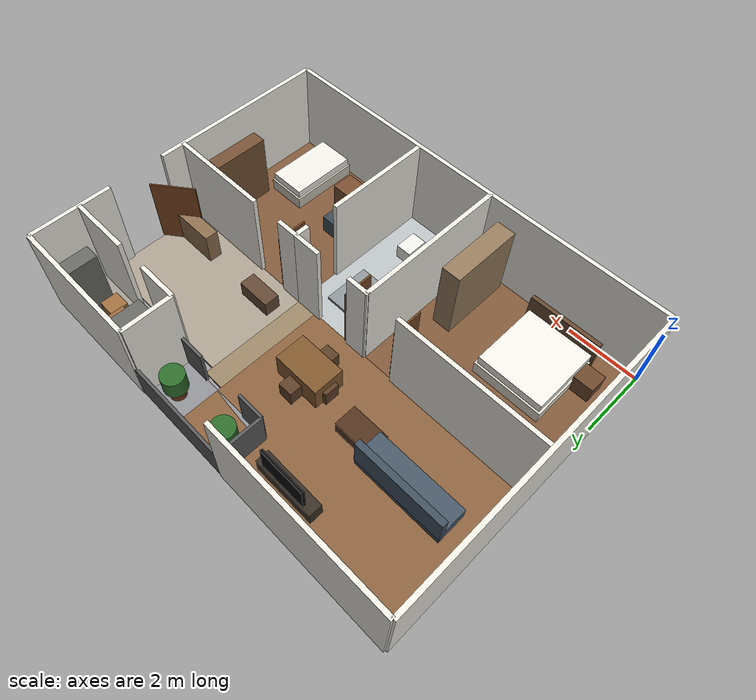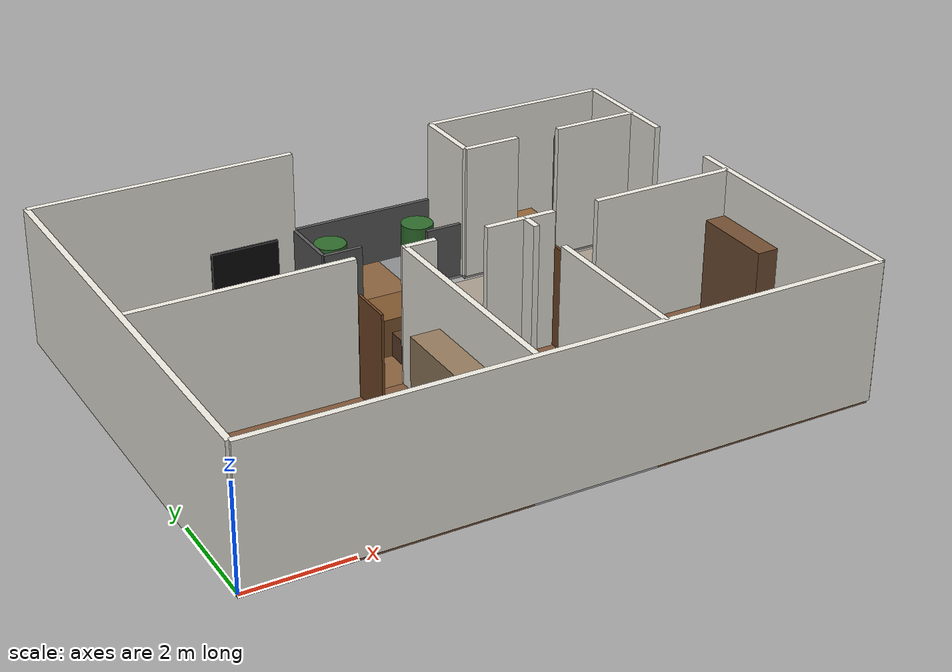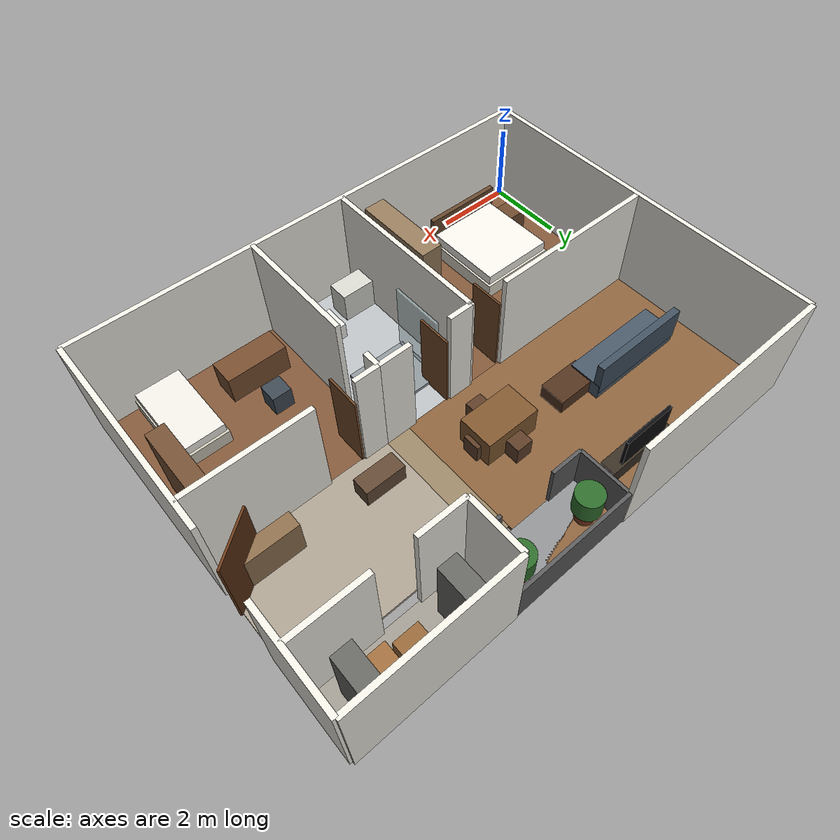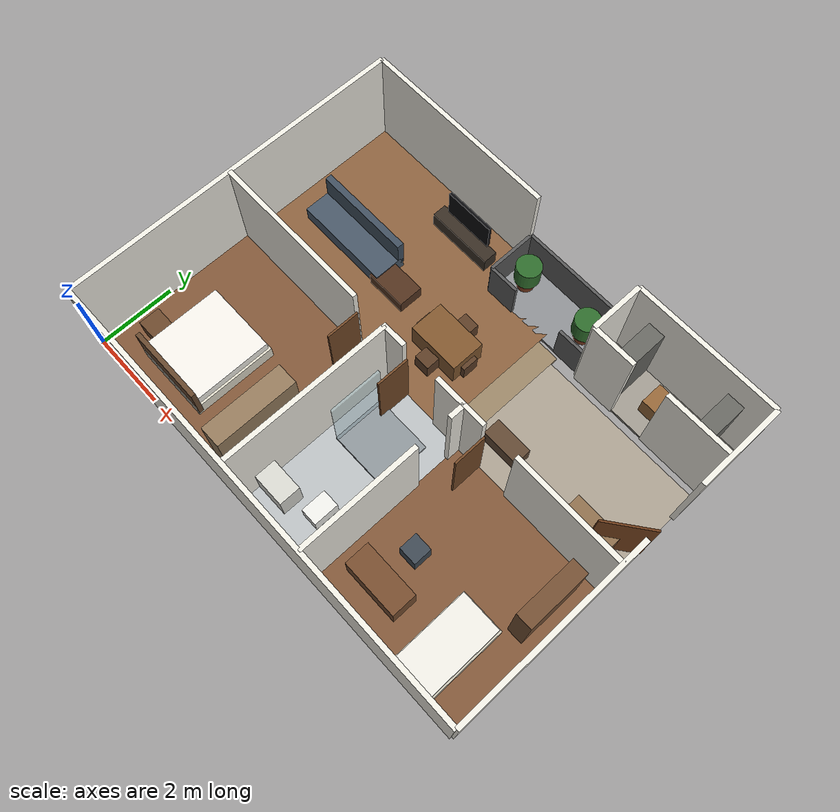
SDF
<?xml version="1.0" ?>
<sdf version="1.9">
  <world name="noni_apartment">
    <gravity>0 0 -9.8</gravity>
    <physics name="default_physics" type="ode">
      <max_step_size>0.001</max_step_size>
      <real_time_factor>1.0</real_time_factor>
    </physics>

    <!-- Gazebo Sim systems. These match the working TurtleBot3 house world. -->
    <plugin
      filename="gz-sim-physics-system"
      name="gz::sim::systems::Physics">
    </plugin>
    <plugin
      filename="gz-sim-user-commands-system"
      name="gz::sim::systems::UserCommands">
    </plugin>
    <plugin
      filename="gz-sim-scene-broadcaster-system"
      name="gz::sim::systems::SceneBroadcaster">
    </plugin>
    <plugin
      filename="gz-sim-sensors-system"
      name="gz::sim::systems::Sensors">
      <render_engine>ogre2</render_engine>
    </plugin>
    <plugin
      filename="gz-sim-imu-system"
      name="gz::sim::systems::Imu">
    </plugin>

    <scene>
      <ambient>0.42 0.42 0.42 1</ambient>
      <background>0.72 0.80 0.88 1</background>
      <shadows>true</shadows>
    </scene>

    <light name="sun" type="directional">
      <cast_shadows>true</cast_shadows>
      <pose>0 0 10 0 0 0</pose>
      <diffuse>0.92 0.88 0.80 1</diffuse>
      <specular>0.25 0.25 0.25 1</specular>
      <attenuation>
        <range>1000</range>
        <constant>0.9</constant>
        <linear>0.01</linear>
        <quadratic>0.001</quadratic>
      </attenuation>
      <direction>-0.35 0.25 -0.9</direction>
    </light>

    <model name="floor_living">
      <static>true</static>
      <pose>3.500 6.700 -0.040 0.000 0.000 0.000</pose>
      <link name="link">
        <collision name="collision">
          <geometry><box><size>7.000 4.600 0.080</size></box></geometry>
        </collision>
        <visual name="visual">
          <geometry><box><size>7.000 4.600 0.080</size></box></geometry>

          <material>
            <ambient>0.54 0.38 0.24 1</ambient>
            <diffuse>0.54 0.38 0.24 1</diffuse>
            <specular>0.15 0.15 0.15 1</specular>
          </material>
        </visual>
      </link>
    </model>
    <model name="floor_master">
      <static>true</static>
      <pose>2.600 2.200 -0.040 0.000 0.000 0.000</pose>
      <link name="link">
        <collision name="collision">
          <geometry><box><size>5.200 4.400 0.080</size></box></geometry>
        </collision>
        <visual name="visual">
          <geometry><box><size>5.200 4.400 0.080</size></box></geometry>

          <material>
            <ambient>0.50 0.34 0.22 1</ambient>
            <diffuse>0.50 0.34 0.22 1</diffuse>
            <specular>0.15 0.15 0.15 1</specular>
          </material>
        </visual>
      </link>
    </model>
    <model name="floor_bath">
      <static>true</static>
      <pose>6.400 2.200 -0.040 0.000 0.000 0.000</pose>
      <link name="link">
        <collision name="collision">
          <geometry><box><size>2.400 4.400 0.080</size></box></geometry>
        </collision>
        <visual name="visual">
          <geometry><box><size>2.400 4.400 0.080</size></box></geometry>

          <material>
            <ambient>0.72 0.74 0.75 1</ambient>
            <diffuse>0.72 0.74 0.75 1</diffuse>
            <specular>0.15 0.15 0.15 1</specular>
          </material>
        </visual>
      </link>
    </model>
    <model name="floor_study">
      <static>true</static>
      <pose>9.800 2.200 -0.040 0.000 0.000 0.000</pose>
      <link name="link">
        <collision name="collision">
          <geometry><box><size>4.400 4.400 0.080</size></box></geometry>
        </collision>
        <visual name="visual">
          <geometry><box><size>4.400 4.400 0.080</size></box></geometry>

          <material>
            <ambient>0.50 0.34 0.22 1</ambient>
            <diffuse>0.50 0.34 0.22 1</diffuse>
            <specular>0.15 0.15 0.15 1</specular>
          </material>
        </visual>
      </link>
    </model>
    <model name="floor_entry">
      <static>true</static>
      <pose>9.800 5.900 -0.040 0.000 0.000 0.000</pose>
      <link name="link">
        <collision name="collision">
          <geometry><box><size>4.400 3.000 0.080</size></box></geometry>
        </collision>
        <visual name="visual">
          <geometry><box><size>4.400 3.000 0.080</size></box></geometry>

          <material>
            <ambient>0.66 0.62 0.56 1</ambient>
            <diffuse>0.66 0.62 0.56 1</diffuse>
            <specular>0.15 0.15 0.15 1</specular>
          </material>
        </visual>
      </link>
    </model>

    <model name="floor_transition">
      <static>true</static>
      <pose>7.300 6.000 -0.040 0.000 0.000 0.000</pose>
      <link name="link">
        <collision name="collision">
          <geometry><box><size>0.600 3.200 0.080</size></box></geometry>
        </collision>
        <visual name="visual">
          <geometry><box><size>0.600 3.200 0.080</size></box></geometry>

          <material>
            <ambient>0.60 0.52 0.40 1</ambient>
            <diffuse>0.60 0.52 0.40 1</diffuse>
            <specular>0.15 0.15 0.15 1</specular>
          </material>
        </visual>
      </link>
    </model>
    <model name="floor_storage">
      <static>true</static>
      <pose>10.100 8.300 -0.040 0.000 0.000 0.000</pose>
      <link name="link">
        <collision name="collision">
          <geometry><box><size>3.800 1.400 0.080</size></box></geometry>
        </collision>
        <visual name="visual">
          <geometry><box><size>3.800 1.400 0.080</size></box></geometry>

          <material>
            <ambient>0.62 0.60 0.56 1</ambient>
            <diffuse>0.62 0.60 0.56 1</diffuse>
            <specular>0.15 0.15 0.15 1</specular>
          </material>
        </visual>
      </link>
    </model>
    <model name="floor_balcony">
      <static>true</static>
      <pose>6.700 8.350 -0.040 0.000 0.000 0.000</pose>
      <link name="link">
        <collision name="collision">
          <geometry><box><size>3.000 1.300 0.080</size></box></geometry>
        </collision>
        <visual name="visual">
          <geometry><box><size>3.000 1.300 0.080</size></box></geometry>

          <material>
            <ambient>0.55 0.56 0.57 1</ambient>
            <diffuse>0.55 0.56 0.57 1</diffuse>
            <specular>0.15 0.15 0.15 1</specular>
          </material>
        </visual>
      </link>
    </model>
    <model name="outer_south">
      <static>true</static>
      <pose>6.000 0.000 1.350 0.000 0.000 0.000</pose>
      <link name="link">
        <collision name="collision">
          <geometry><box><size>12.000 0.120 2.700</size></box></geometry>
        </collision>
        <visual name="visual">
          <geometry><box><size>12.000 0.120 2.700</size></box></geometry>

          <material>
            <ambient>0.93 0.92 0.88 1</ambient>
            <diffuse>0.93 0.92 0.88 1</diffuse>
            <specular>0.15 0.15 0.15 1</specular>
          </material>
        </visual>
      </link>
    </model>
    <model name="outer_west">
      <static>true</static>
      <pose>0.000 4.500 1.350 0.000 0.000 0.000</pose>
      <link name="link">
        <collision name="collision">
          <geometry><box><size>0.120 9.000 2.700</size></box></geometry>
        </collision>
        <visual name="visual">
          <geometry><box><size>0.120 9.000 2.700</size></box></geometry>

          <material>
            <ambient>0.93 0.92 0.88 1</ambient>
            <diffuse>0.93 0.92 0.88 1</diffuse>
            <specular>0.15 0.15 0.15 1</specular>
          </material>
        </visual>
      </link>
    </model>
    <model name="outer_north_left">
      <static>true</static>
      <pose>2.600 9.000 1.350 0.000 0.000 0.000</pose>
      <link name="link">
        <collision name="collision">
          <geometry><box><size>5.200 0.120 2.700</size></box></geometry>
        </collision>
        <visual name="visual">
          <geometry><box><size>5.200 0.120 2.700</size></box></geometry>

          <material>
            <ambient>0.93 0.92 0.88 1</ambient>
            <diffuse>0.93 0.92 0.88 1</diffuse>
            <specular>0.15 0.15 0.15 1</specular>
          </material>
        </visual>
      </link>
    </model>
    <model name="outer_north_right">
      <static>true</static>
      <pose>10.100 9.000 1.350 0.000 0.000 0.000</pose>
      <link name="link">
        <collision name="collision">
          <geometry><box><size>3.800 0.120 2.700</size></box></geometry>
        </collision>
        <visual name="visual">
          <geometry><box><size>3.800 0.120 2.700</size></box></geometry>

          <material>
            <ambient>0.93 0.92 0.88 1</ambient>
            <diffuse>0.93 0.92 0.88 1</diffuse>
            <specular>0.15 0.15 0.15 1</specular>
          </material>
        </visual>
      </link>
    </model>
    <model name="outer_east_lower">
      <static>true</static>
      <pose>12.000 2.550 1.350 0.000 0.000 0.000</pose>
      <link name="link">
        <collision name="collision">
          <geometry><box><size>0.120 5.100 2.700</size></box></geometry>
        </collision>
        <visual name="visual">
          <geometry><box><size>0.120 5.100 2.700</size></box></geometry>

          <material>
            <ambient>0.93 0.92 0.88 1</ambient>
            <diffuse>0.93 0.92 0.88 1</diffuse>
            <specular>0.15 0.15 0.15 1</specular>
          </material>
        </visual>
      </link>
    </model>
    <model name="outer_east_upper">
      <static>true</static>
      <pose>12.000 7.850 1.350 0.000 0.000 0.000</pose>
      <link name="link">
        <collision name="collision">
          <geometry><box><size>0.120 2.300 2.700</size></box></geometry>
        </collision>
        <visual name="visual">
          <geometry><box><size>0.120 2.300 2.700</size></box></geometry>

          <material>
            <ambient>0.93 0.92 0.88 1</ambient>
            <diffuse>0.93 0.92 0.88 1</diffuse>
            <specular>0.15 0.15 0.15 1</specular>
          </material>
        </visual>
      </link>
    </model>
    <model name="wall_living_master_a">
      <static>true</static>
      <pose>2.125 4.400 1.350 0.000 0.000 0.000</pose>
      <link name="link">
        <collision name="collision">
          <geometry><box><size>4.250 0.120 2.700</size></box></geometry>
        </collision>
        <visual name="visual">
          <geometry><box><size>4.250 0.120 2.700</size></box></geometry>

          <material>
            <ambient>0.93 0.92 0.88 1</ambient>
            <diffuse>0.93 0.92 0.88 1</diffuse>
            <specular>0.15 0.15 0.15 1</specular>
          </material>
        </visual>
      </link>
    </model>
    <model name="wall_living_master_b">
      <static>true</static>
      <pose>5.175 4.400 1.350 0.000 0.000 0.000</pose>
      <link name="link">
        <collision name="collision">
          <geometry><box><size>0.050 0.120 2.700</size></box></geometry>
        </collision>
        <visual name="visual">
          <geometry><box><size>0.050 0.120 2.700</size></box></geometry>

          <material>
            <ambient>0.93 0.92 0.88 1</ambient>
            <diffuse>0.93 0.92 0.88 1</diffuse>
            <specular>0.15 0.15 0.15 1</specular>
          </material>
        </visual>
      </link>
    </model>
    <model name="wall_living_bath_a">
      <static>true</static>
      <pose>5.500 4.400 1.350 0.000 0.000 0.000</pose>
      <link name="link">
        <collision name="collision">
          <geometry><box><size>0.600 0.120 2.700</size></box></geometry>
        </collision>
        <visual name="visual">
          <geometry><box><size>0.600 0.120 2.700</size></box></geometry>

          <material>
            <ambient>0.93 0.92 0.88 1</ambient>
            <diffuse>0.93 0.92 0.88 1</diffuse>
            <specular>0.15 0.15 0.15 1</specular>
          </material>
        </visual>
      </link>
    </model>
    <model name="wall_living_bath_b">
      <static>true</static>
      <pose>7.200 4.400 1.350 0.000 0.000 0.000</pose>
      <link name="link">
        <collision name="collision">
          <geometry><box><size>0.800 0.120 2.700</size></box></geometry>
        </collision>
        <visual name="visual">
          <geometry><box><size>0.800 0.120 2.700</size></box></geometry>

          <material>
            <ambient>0.93 0.92 0.88 1</ambient>
            <diffuse>0.93 0.92 0.88 1</diffuse>
            <specular>0.15 0.15 0.15 1</specular>
          </material>
        </visual>
      </link>
    </model>
    <model name="wall_hall_study_a">
      <static>true</static>
      <pose>7.900 4.400 1.350 0.000 0.000 0.000</pose>
      <link name="link">
        <collision name="collision">
          <geometry><box><size>0.600 0.120 2.700</size></box></geometry>
        </collision>
        <visual name="visual">
          <geometry><box><size>0.600 0.120 2.700</size></box></geometry>

          <material>
            <ambient>0.93 0.92 0.88 1</ambient>
            <diffuse>0.93 0.92 0.88 1</diffuse>
            <specular>0.15 0.15 0.15 1</specular>
          </material>
        </visual>
      </link>
    </model>
    <model name="wall_hall_study_b">
      <static>true</static>
      <pose>10.550 4.400 1.350 0.000 0.000 0.000</pose>
      <link name="link">
        <collision name="collision">
          <geometry><box><size>2.900 0.120 2.700</size></box></geometry>
        </collision>
        <visual name="visual">
          <geometry><box><size>2.900 0.120 2.700</size></box></geometry>

          <material>
            <ambient>0.93 0.92 0.88 1</ambient>
            <diffuse>0.93 0.92 0.88 1</diffuse>
            <specular>0.15 0.15 0.15 1</specular>
          </material>
        </visual>
      </link>
    </model>
    <model name="wall_master_bath">
      <static>true</static>
      <pose>5.200 2.200 1.350 0.000 0.000 0.000</pose>
      <link name="link">
        <collision name="collision">
          <geometry><box><size>0.120 4.400 2.700</size></box></geometry>
        </collision>
        <visual name="visual">
          <geometry><box><size>0.120 4.400 2.700</size></box></geometry>

          <material>
            <ambient>0.93 0.92 0.88 1</ambient>
            <diffuse>0.93 0.92 0.88 1</diffuse>
            <specular>0.15 0.15 0.15 1</specular>
          </material>
        </visual>
      </link>
    </model>
    <model name="wall_bath_study">
      <static>true</static>
      <pose>7.600 1.550 1.350 0.000 0.000 0.000</pose>
      <link name="link">
        <collision name="collision">
          <geometry><box><size>0.120 3.100 2.700</size></box></geometry>
        </collision>
        <visual name="visual">
          <geometry><box><size>0.120 3.100 2.700</size></box></geometry>

          <material>
            <ambient>0.93 0.92 0.88 1</ambient>
            <diffuse>0.93 0.92 0.88 1</diffuse>
            <specular>0.15 0.15 0.15 1</specular>
          </material>
        </visual>
      </link>
    </model>
    <model name="wall_bath_study_upper">
      <static>true</static>
      <pose>7.600 4.200 1.350 0.000 0.000 0.000</pose>
      <link name="link">
        <collision name="collision">
          <geometry><box><size>0.120 0.400 2.700</size></box></geometry>
        </collision>
        <visual name="visual">
          <geometry><box><size>0.120 0.400 2.700</size></box></geometry>

          <material>
            <ambient>0.93 0.92 0.88 1</ambient>
            <diffuse>0.93 0.92 0.88 1</diffuse>
            <specular>0.15 0.15 0.15 1</specular>
          </material>
        </visual>
      </link>
    </model>
    <model name="wall_living_storage_a">
      <static>true</static>
      <pose>8.775 7.600 1.350 0.000 0.000 0.000</pose>
      <link name="link">
        <collision name="collision">
          <geometry><box><size>1.150 0.120 2.700</size></box></geometry>
        </collision>
        <visual name="visual">
          <geometry><box><size>1.150 0.120 2.700</size></box></geometry>

          <material>
            <ambient>0.93 0.92 0.88 1</ambient>
            <diffuse>0.93 0.92 0.88 1</diffuse>
            <specular>0.15 0.15 0.15 1</specular>
          </material>
        </visual>
      </link>
    </model>
    <model name="wall_living_storage_b">
      <static>true</static>
      <pose>11.125 7.600 1.350 0.000 0.000 0.000</pose>
      <link name="link">
        <collision name="collision">
          <geometry><box><size>1.750 0.120 2.700</size></box></geometry>
        </collision>
        <visual name="visual">
          <geometry><box><size>1.750 0.120 2.700</size></box></geometry>

          <material>
            <ambient>0.93 0.92 0.88 1</ambient>
            <diffuse>0.93 0.92 0.88 1</diffuse>
            <specular>0.15 0.15 0.15 1</specular>
          </material>
        </visual>
      </link>
    </model>
    <model name="wall_balcony_storage">
      <static>true</static>
      <pose>8.200 8.300 1.350 0.000 0.000 0.000</pose>
      <link name="link">
        <collision name="collision">
          <geometry><box><size>0.120 1.400 2.700</size></box></geometry>
        </collision>
        <visual name="visual">
          <geometry><box><size>0.120 1.400 2.700</size></box></geometry>

          <material>
            <ambient>0.93 0.92 0.88 1</ambient>
            <diffuse>0.93 0.92 0.88 1</diffuse>
            <specular>0.15 0.15 0.15 1</specular>
          </material>
        </visual>
      </link>
    </model>
    <model name="wall_balcony_front_left">
      <static>true</static>
      <pose>5.600 7.700 0.550 0.000 0.000 0.000</pose>
      <link name="link">
        <collision name="collision">
          <geometry><box><size>0.800 0.080 1.100</size></box></geometry>
        </collision>
        <visual name="visual">
          <geometry><box><size>0.800 0.080 1.100</size></box></geometry>

          <material>
            <ambient>0.35 0.35 0.35 1</ambient>
            <diffuse>0.35 0.35 0.35 1</diffuse>
            <specular>0.15 0.15 0.15 1</specular>
          </material>
        </visual>
      </link>
    </model>
    <model name="wall_balcony_front_right">
      <static>true</static>
      <pose>7.800 7.700 0.550 0.000 0.000 0.000</pose>
      <link name="link">
        <collision name="collision">
          <geometry><box><size>0.800 0.080 1.100</size></box></geometry>
        </collision>
        <visual name="visual">
          <geometry><box><size>0.800 0.080 1.100</size></box></geometry>

          <material>
            <ambient>0.35 0.35 0.35 1</ambient>
            <diffuse>0.35 0.35 0.35 1</diffuse>
            <specular>0.15 0.15 0.15 1</specular>
          </material>
        </visual>
      </link>
    </model>
    <model name="balcony_left_rail">
      <static>true</static>
      <pose>5.200 8.350 0.550 0.000 0.000 0.000</pose>
      <link name="link">
        <collision name="collision">
          <geometry><box><size>0.080 1.300 1.100</size></box></geometry>
        </collision>
        <visual name="visual">
          <geometry><box><size>0.080 1.300 1.100</size></box></geometry>

          <material>
            <ambient>0.35 0.35 0.35 1</ambient>
            <diffuse>0.35 0.35 0.35 1</diffuse>
            <specular>0.15 0.15 0.15 1</specular>
          </material>
        </visual>
      </link>
    </model>
    <model name="balcony_right_rail">
      <static>true</static>
      <pose>8.200 8.350 0.550 0.000 0.000 0.000</pose>
      <link name="link">
        <collision name="collision">
          <geometry><box><size>0.080 1.300 1.100</size></box></geometry>
        </collision>
        <visual name="visual">
          <geometry><box><size>0.080 1.300 1.100</size></box></geometry>

          <material>
            <ambient>0.35 0.35 0.35 1</ambient>
            <diffuse>0.35 0.35 0.35 1</diffuse>
            <specular>0.15 0.15 0.15 1</specular>
          </material>
        </visual>
      </link>
    </model>
    <model name="balcony_north_rail">
      <static>true</static>
      <pose>6.700 9.000 0.550 0.000 0.000 0.000</pose>
      <link name="link">
        <collision name="collision">
          <geometry><box><size>3.000 0.080 1.100</size></box></geometry>
        </collision>
        <visual name="visual">
          <geometry><box><size>3.000 0.080 1.100</size></box></geometry>

          <material>
            <ambient>0.35 0.35 0.35 1</ambient>
            <diffuse>0.35 0.35 0.35 1</diffuse>
            <specular>0.15 0.15 0.15 1</specular>
          </material>
        </visual>
      </link>
    </model>
    <model name="sofa_base">
      <static>true</static>
      <pose>2.000 6.200 0.210 0.000 0.000 0.000</pose>
      <link name="link">
        <collision name="collision">
          <geometry><box><size>2.600 0.850 0.420</size></box></geometry>
        </collision>
        <visual name="visual">
          <geometry><box><size>2.600 0.850 0.420</size></box></geometry>

          <material>
            <ambient>0.28 0.34 0.40 1</ambient>
            <diffuse>0.28 0.34 0.40 1</diffuse>
            <specular>0.15 0.15 0.15 1</specular>
          </material>
        </visual>
      </link>
    </model>
    <model name="sofa_back">
      <static>true</static>
      <pose>2.000 6.550 0.620 0.000 0.000 0.000</pose>
      <link name="link">
        <collision name="collision">
          <geometry><box><size>2.600 0.180 0.850</size></box></geometry>
        </collision>
        <visual name="visual">
          <geometry><box><size>2.600 0.180 0.850</size></box></geometry>

          <material>
            <ambient>0.25 0.31 0.37 1</ambient>
            <diffuse>0.25 0.31 0.37 1</diffuse>
            <specular>0.15 0.15 0.15 1</specular>
          </material>
        </visual>
      </link>
    </model>
    <model name="coffee_table">
      <static>true</static>
      <pose>3.650 6.050 0.190 0.000 0.000 0.000</pose>
      <link name="link">
        <collision name="collision">
          <geometry><box><size>1.100 0.650 0.380</size></box></geometry>
        </collision>
        <visual name="visual">
          <geometry><box><size>1.100 0.650 0.380</size></box></geometry>

          <material>
            <ambient>0.32 0.20 0.12 1</ambient>
            <diffuse>0.32 0.20 0.12 1</diffuse>
            <specular>0.15 0.15 0.15 1</specular>
          </material>
        </visual>
      </link>
    </model>
    <model name="tv_console">
      <static>true</static>
      <pose>3.850 8.150 0.225 0.000 0.000 0.000</pose>
      <link name="link">
        <collision name="collision">
          <geometry><box><size>1.800 0.380 0.450</size></box></geometry>
        </collision>
        <visual name="visual">
          <geometry><box><size>1.800 0.380 0.450</size></box></geometry>

          <material>
            <ambient>0.22 0.18 0.14 1</ambient>
            <diffuse>0.22 0.18 0.14 1</diffuse>
            <specular>0.15 0.15 0.15 1</specular>
          </material>
        </visual>
      </link>
    </model>
    <model name="tv_screen">
      <static>true</static>
      <pose>3.850 8.280 0.950 0.000 0.000 0.000</pose>
      <link name="link">
        <collision name="collision">
          <geometry><box><size>1.350 0.080 0.780</size></box></geometry>
        </collision>
        <visual name="visual">
          <geometry><box><size>1.350 0.080 0.780</size></box></geometry>

          <material>
            <ambient>0.04 0.04 0.05 1</ambient>
            <diffuse>0.04 0.04 0.05 1</diffuse>
            <specular>0.15 0.15 0.15 1</specular>
          </material>
        </visual>
      </link>
    </model>
    <model name="dining_table">
      <static>true</static>
      <pose>5.650 5.850 0.375 0.000 0.000 0.000</pose>
      <link name="link">
        <collision name="collision">
          <geometry><box><size>1.400 0.900 0.750</size></box></geometry>
        </collision>
        <visual name="visual">
          <geometry><box><size>1.400 0.900 0.750</size></box></geometry>

          <material>
            <ambient>0.50 0.34 0.18 1</ambient>
            <diffuse>0.50 0.34 0.18 1</diffuse>
            <specular>0.15 0.15 0.15 1</specular>
          </material>
        </visual>
      </link>
    </model>
    <model name="dining_chair_1">
      <static>true</static>
      <pose>5.050 5.850 0.240 0.000 0.000 0.000</pose>
      <link name="link">
        <collision name="collision">
          <geometry><box><size>0.420 0.420 0.480</size></box></geometry>
        </collision>
        <visual name="visual">
          <geometry><box><size>0.420 0.420 0.480</size></box></geometry>

          <material>
            <ambient>0.36 0.24 0.15 1</ambient>
            <diffuse>0.36 0.24 0.15 1</diffuse>
            <specular>0.15 0.15 0.15 1</specular>
          </material>
        </visual>
      </link>
    </model>
    <model name="dining_chair_2">
      <static>true</static>
      <pose>6.250 5.850 0.240 0.000 0.000 0.000</pose>
      <link name="link">
        <collision name="collision">
          <geometry><box><size>0.420 0.420 0.480</size></box></geometry>
        </collision>
        <visual name="visual">
          <geometry><box><size>0.420 0.420 0.480</size></box></geometry>

          <material>
            <ambient>0.36 0.24 0.15 1</ambient>
            <diffuse>0.36 0.24 0.15 1</diffuse>
            <specular>0.15 0.15 0.15 1</specular>
          </material>
        </visual>
      </link>
    </model>
    <model name="dining_chair_3">
      <static>true</static>
      <pose>5.650 5.250 0.240 0.000 0.000 0.000</pose>
      <link name="link">
        <collision name="collision">
          <geometry><box><size>0.420 0.420 0.480</size></box></geometry>
        </collision>
        <visual name="visual">
          <geometry><box><size>0.420 0.420 0.480</size></box></geometry>

          <material>
            <ambient>0.36 0.24 0.15 1</ambient>
            <diffuse>0.36 0.24 0.15 1</diffuse>
            <specular>0.15 0.15 0.15 1</specular>
          </material>
        </visual>
      </link>
    </model>
    <model name="dining_chair_4">
      <static>true</static>
      <pose>5.650 6.450 0.240 0.000 0.000 0.000</pose>
      <link name="link">
        <collision name="collision">
          <geometry><box><size>0.420 0.420 0.480</size></box></geometry>
        </collision>
        <visual name="visual">
          <geometry><box><size>0.420 0.420 0.480</size></box></geometry>

          <material>
            <ambient>0.36 0.24 0.15 1</ambient>
            <diffuse>0.36 0.24 0.15 1</diffuse>
            <specular>0.15 0.15 0.15 1</specular>
          </material>
        </visual>
      </link>
    </model>
    <model name="master_bed_base">
      <static>true</static>
      <pose>2.000 1.650 0.190 0.000 0.000 0.000</pose>
      <link name="link">
        <collision name="collision">
          <geometry><box><size>2.000 2.200 0.380</size></box></geometry>
        </collision>
        <visual name="visual">
          <geometry><box><size>2.000 2.200 0.380</size></box></geometry>

          <material>
            <ambient>0.86 0.84 0.78 1</ambient>
            <diffuse>0.86 0.84 0.78 1</diffuse>
            <specular>0.15 0.15 0.15 1</specular>
          </material>
        </visual>
      </link>
    </model>
    <model name="master_mattress">
      <static>true</static>
      <pose>2.000 1.650 0.520 0.000 0.000 0.000</pose>
      <link name="link">
        <collision name="collision">
          <geometry><box><size>1.900 2.100 0.250</size></box></geometry>
        </collision>
        <visual name="visual">
          <geometry><box><size>1.900 2.100 0.250</size></box></geometry>

          <material>
            <ambient>0.94 0.93 0.90 1</ambient>
            <diffuse>0.94 0.93 0.90 1</diffuse>
            <specular>0.15 0.15 0.15 1</specular>
          </material>
        </visual>
      </link>
    </model>
    <model name="master_headboard">
      <static>true</static>
      <pose>2.000 0.620 0.620 0.000 0.000 0.000</pose>
      <link name="link">
        <collision name="collision">
          <geometry><box><size>2.050 0.120 1.000</size></box></geometry>
        </collision>
        <visual name="visual">
          <geometry><box><size>2.050 0.120 1.000</size></box></geometry>

          <material>
            <ambient>0.40 0.28 0.18 1</ambient>
            <diffuse>0.40 0.28 0.18 1</diffuse>
            <specular>0.15 0.15 0.15 1</specular>
          </material>
        </visual>
      </link>
    </model>
    <model name="master_wardrobe">
      <static>true</static>
      <pose>4.450 1.250 1.100 0.000 0.000 0.000</pose>
      <link name="link">
        <collision name="collision">
          <geometry><box><size>0.550 2.100 2.200</size></box></geometry>
        </collision>
        <visual name="visual">
          <geometry><box><size>0.550 2.100 2.200</size></box></geometry>

          <material>
            <ambient>0.58 0.48 0.36 1</ambient>
            <diffuse>0.58 0.48 0.36 1</diffuse>
            <specular>0.15 0.15 0.15 1</specular>
          </material>
        </visual>
      </link>
    </model>
    <model name="master_nightstand">
      <static>true</static>
      <pose>0.750 1.150 0.275 0.000 0.000 0.000</pose>
      <link name="link">
        <collision name="collision">
          <geometry><box><size>0.550 0.550 0.550</size></box></geometry>
        </collision>
        <visual name="visual">
          <geometry><box><size>0.550 0.550 0.550</size></box></geometry>

          <material>
            <ambient>0.42 0.28 0.17 1</ambient>
            <diffuse>0.42 0.28 0.17 1</diffuse>
            <specular>0.15 0.15 0.15 1</specular>
          </material>
        </visual>
      </link>
    </model>
    <model name="bath_vanity">
      <static>true</static>
      <pose>5.700 0.750 0.400 0.000 0.000 0.000</pose>
      <link name="link">
        <collision name="collision">
          <geometry><box><size>0.850 0.550 0.800</size></box></geometry>
        </collision>
        <visual name="visual">
          <geometry><box><size>0.850 0.550 0.800</size></box></geometry>

          <material>
            <ambient>0.83 0.83 0.80 1</ambient>
            <diffuse>0.83 0.83 0.80 1</diffuse>
            <specular>0.15 0.15 0.15 1</specular>
          </material>
        </visual>
      </link>
    </model>
    <model name="bath_toilet_base">
      <static>true</static>
      <pose>6.650 1.100 0.215 0.000 0.000 0.000</pose>
      <link name="link">
        <collision name="collision">
          <geometry><box><size>0.450 0.650 0.430</size></box></geometry>
        </collision>
        <visual name="visual">
          <geometry><box><size>0.450 0.650 0.430</size></box></geometry>

          <material>
            <ambient>0.92 0.92 0.90 1</ambient>
            <diffuse>0.92 0.92 0.90 1</diffuse>
            <specular>0.15 0.15 0.15 1</specular>
          </material>
        </visual>
      </link>
    </model>
    <model name="bath_shower">
      <static>true</static>
      <pose>6.350 3.150 0.040 0.000 0.000 0.000</pose>
      <link name="link">
        <collision name="collision">
          <geometry><box><size>1.550 1.350 0.080</size></box></geometry>
        </collision>
        <visual name="visual">
          <geometry><box><size>1.550 1.350 0.080</size></box></geometry>

          <material>
            <ambient>0.55 0.58 0.60 1</ambient>
            <diffuse>0.55 0.58 0.60 1</diffuse>
            <specular>0.15 0.15 0.15 1</specular>
          </material>
        </visual>
      </link>
    </model>
    <model name="bath_shower_wall">
      <static>true</static>
      <pose>5.620 3.150 0.950 0.000 0.000 0.000</pose>
      <link name="link">
        <collision name="collision">
          <geometry><box><size>0.060 1.350 1.900</size></box></geometry>
        </collision>
        <visual name="visual">
          <geometry><box><size>0.060 1.350 1.900</size></box></geometry>

          <material>
            <ambient>0.70 0.82 0.86 0.45</ambient>
            <diffuse>0.70 0.82 0.86 0.45</diffuse>
            <specular>0.15 0.15 0.15 1</specular>
          </material>
        </visual>
      </link>
    </model>
    <model name="single_bed_base">
      <static>true</static>
      <pose>10.650 1.150 0.180 0.000 0.000 0.000</pose>
      <link name="link">
        <collision name="collision">
          <geometry><box><size>1.150 2.050 0.360</size></box></geometry>
        </collision>
        <visual name="visual">
          <geometry><box><size>1.150 2.050 0.360</size></box></geometry>

          <material>
            <ambient>0.78 0.76 0.70 1</ambient>
            <diffuse>0.78 0.76 0.70 1</diffuse>
            <specular>0.15 0.15 0.15 1</specular>
          </material>
        </visual>
      </link>
    </model>
    <model name="single_mattress">
      <static>true</static>
      <pose>10.650 1.150 0.490 0.000 0.000 0.000</pose>
      <link name="link">
        <collision name="collision">
          <geometry><box><size>1.070 1.950 0.220</size></box></geometry>
        </collision>
        <visual name="visual">
          <geometry><box><size>1.070 1.950 0.220</size></box></geometry>

          <material>
            <ambient>0.92 0.91 0.88 1</ambient>
            <diffuse>0.92 0.91 0.88 1</diffuse>
            <specular>0.15 0.15 0.15 1</specular>
          </material>
        </visual>
      </link>
    </model>
    <model name="study_desk">
      <static>true</static>
      <pose>8.750 1.000 0.375 0.000 0.000 0.000</pose>
      <link name="link">
        <collision name="collision">
          <geometry><box><size>1.500 0.650 0.750</size></box></geometry>
        </collision>
        <visual name="visual">
          <geometry><box><size>1.500 0.650 0.750</size></box></geometry>

          <material>
            <ambient>0.46 0.30 0.18 1</ambient>
            <diffuse>0.46 0.30 0.18 1</diffuse>
            <specular>0.15 0.15 0.15 1</specular>
          </material>
        </visual>
      </link>
    </model>
    <model name="study_chair">
      <static>true</static>
      <pose>8.750 2.000 0.275 0.000 0.000 0.000</pose>
      <link name="link">
        <collision name="collision">
          <geometry><box><size>0.480 0.480 0.550</size></box></geometry>
        </collision>
        <visual name="visual">
          <geometry><box><size>0.480 0.480 0.550</size></box></geometry>

          <material>
            <ambient>0.24 0.28 0.32 1</ambient>
            <diffuse>0.24 0.28 0.32 1</diffuse>
            <specular>0.15 0.15 0.15 1</specular>
          </material>
        </visual>
      </link>
    </model>
    <model name="bookshelf">
      <static>true</static>
      <pose>11.450 3.150 1.000 0.000 0.000 0.000</pose>
      <link name="link">
        <collision name="collision">
          <geometry><box><size>0.420 1.600 2.000</size></box></geometry>
        </collision>
        <visual name="visual">
          <geometry><box><size>0.420 1.600 2.000</size></box></geometry>

          <material>
            <ambient>0.45 0.31 0.20 1</ambient>
            <diffuse>0.45 0.31 0.20 1</diffuse>
            <specular>0.15 0.15 0.15 1</specular>
          </material>
        </visual>
      </link>
    </model>
    <model name="shoe_cabinet">
      <static>true</static>
      <pose>10.950 5.100 0.475 0.000 0.000 0.000</pose>
      <link name="link">
        <collision name="collision">
          <geometry><box><size>1.250 0.380 0.950</size></box></geometry>
        </collision>
        <visual name="visual">
          <geometry><box><size>1.250 0.380 0.950</size></box></geometry>

          <material>
            <ambient>0.55 0.43 0.30 1</ambient>
            <diffuse>0.55 0.43 0.30 1</diffuse>
            <specular>0.15 0.15 0.15 1</specular>
          </material>
        </visual>
      </link>
    </model>
    <model name="entry_bench">
      <static>true</static>
      <pose>8.350 5.150 0.240 0.000 0.000 0.000</pose>
      <link name="link">
        <collision name="collision">
          <geometry><box><size>1.000 0.450 0.480</size></box></geometry>
        </collision>
        <visual name="visual">
          <geometry><box><size>1.000 0.450 0.480</size></box></geometry>

          <material>
            <ambient>0.38 0.28 0.20 1</ambient>
            <diffuse>0.38 0.28 0.20 1</diffuse>
            <specular>0.15 0.15 0.15 1</specular>
          </material>
        </visual>
      </link>
    </model>
    <model name="storage_shelf_1">
      <static>true</static>
      <pose>9.000 8.450 0.950 0.000 0.000 0.000</pose>
      <link name="link">
        <collision name="collision">
          <geometry><box><size>0.450 0.950 1.900</size></box></geometry>
        </collision>
        <visual name="visual">
          <geometry><box><size>0.450 0.950 1.900</size></box></geometry>

          <material>
            <ambient>0.40 0.40 0.38 1</ambient>
            <diffuse>0.40 0.40 0.38 1</diffuse>
            <specular>0.15 0.15 0.15 1</specular>
          </material>
        </visual>
      </link>
    </model>
    <model name="storage_shelf_2">
      <static>true</static>
      <pose>11.250 8.450 0.950 0.000 0.000 0.000</pose>
      <link name="link">
        <collision name="collision">
          <geometry><box><size>0.450 0.950 1.900</size></box></geometry>
        </collision>
        <visual name="visual">
          <geometry><box><size>0.450 0.950 1.900</size></box></geometry>

          <material>
            <ambient>0.40 0.40 0.38 1</ambient>
            <diffuse>0.40 0.40 0.38 1</diffuse>
            <specular>0.15 0.15 0.15 1</specular>
          </material>
        </visual>
      </link>
    </model>
    <model name="storage_box_1">
      <static>true</static>
      <pose>10.050 8.350 0.275 0.000 0.000 0.000</pose>
      <link name="link">
        <collision name="collision">
          <geometry><box><size>0.600 0.600 0.550</size></box></geometry>
        </collision>
        <visual name="visual">
          <geometry><box><size>0.600 0.600 0.550</size></box></geometry>

          <material>
            <ambient>0.58 0.40 0.22 1</ambient>
            <diffuse>0.58 0.40 0.22 1</diffuse>
            <specular>0.15 0.15 0.15 1</specular>
          </material>
        </visual>
      </link>
    </model>
    <model name="storage_box_2">
      <static>true</static>
      <pose>10.650 8.150 0.225 0.000 0.000 0.000</pose>
      <link name="link">
        <collision name="collision">
          <geometry><box><size>0.500 0.500 0.450</size></box></geometry>
        </collision>
        <visual name="visual">
          <geometry><box><size>0.500 0.500 0.450</size></box></geometry>

          <material>
            <ambient>0.62 0.43 0.24 1</ambient>
            <diffuse>0.62 0.43 0.24 1</diffuse>
            <specular>0.15 0.15 0.15 1</specular>
          </material>
        </visual>
      </link>
    </model>
    <model name="balcony_pot_1">
      <static>true</static>
      <pose>5.700 8.450 0.220 0.000 0.000 0.000</pose>
      <link name="link">
        <collision name="collision">
          <geometry><cylinder><radius>0.220</radius><length>0.440</length></cylinder></geometry>
        </collision>
        <visual name="visual">
          <geometry><cylinder><radius>0.220</radius><length>0.440</length></cylinder></geometry>

          <material>
            <ambient>0.43 0.20 0.10 1</ambient>
            <diffuse>0.43 0.20 0.10 1</diffuse>
            <specular>0.15 0.15 0.15 1</specular>
          </material>
        </visual>
      </link>
    </model>
    <model name="balcony_plant_1">
      <static>true</static>
      <pose>5.700 8.450 0.650 0.000 0.000 0.000</pose>
      <link name="link">
        <collision name="collision">
          <geometry><cylinder><radius>0.320</radius><length>0.550</length></cylinder></geometry>
        </collision>
        <visual name="visual">
          <geometry><cylinder><radius>0.320</radius><length>0.550</length></cylinder></geometry>

          <material>
            <ambient>0.18 0.42 0.17 1</ambient>
            <diffuse>0.18 0.42 0.17 1</diffuse>
            <specular>0.15 0.15 0.15 1</specular>
          </material>
        </visual>
      </link>
    </model>
    <model name="balcony_pot_2">
      <static>true</static>
      <pose>7.600 8.450 0.220 0.000 0.000 0.000</pose>
      <link name="link">
        <collision name="collision">
          <geometry><cylinder><radius>0.220</radius><length>0.440</length></cylinder></geometry>
        </collision>
        <visual name="visual">
          <geometry><cylinder><radius>0.220</radius><length>0.440</length></cylinder></geometry>

          <material>
            <ambient>0.43 0.20 0.10 1</ambient>
            <diffuse>0.43 0.20 0.10 1</diffuse>
            <specular>0.15 0.15 0.15 1</specular>
          </material>
        </visual>
      </link>
    </model>
    <model name="balcony_plant_2">
      <static>true</static>
      <pose>7.600 8.450 0.650 0.000 0.000 0.000</pose>
      <link name="link">
        <collision name="collision">
          <geometry><cylinder><radius>0.320</radius><length>0.550</length></cylinder></geometry>
        </collision>
        <visual name="visual">
          <geometry><cylinder><radius>0.320</radius><length>0.550</length></cylinder></geometry>

          <material>
            <ambient>0.18 0.42 0.17 1</ambient>
            <diffuse>0.18 0.42 0.17 1</diffuse>
            <specular>0.15 0.15 0.15 1</specular>
          </material>
        </visual>
      </link>
    </model>

    <!-- Open door leaves are visual-only so they do not block the robot. -->
    <model name="master_door_open">
      <static>true</static>
      <pose>4.30 3.95 1.00 0 0 1.5708</pose>
      <link name="link">
        <visual name="visual">
          <geometry><box><size>0.85 0.05 2.00</size></box></geometry>
          <material><ambient>0.45 0.28 0.15 1</ambient><diffuse>0.45 0.28 0.15 1</diffuse></material>
        </visual>
      </link>
    </model>
    <model name="bath_door_open">
      <static>true</static>
      <pose>5.86 4.00 1.00 0 0 1.5708</pose>
      <link name="link">
        <visual name="visual">
          <geometry><box><size>0.85 0.05 2.00</size></box></geometry>
          <material><ambient>0.45 0.28 0.15 1</ambient><diffuse>0.45 0.28 0.15 1</diffuse></material>
        </visual>
      </link>
    </model>
    <model name="study_door_open">
      <static>true</static>
      <pose>8.24 4.00 1.00 0 0 1.5708</pose>
      <link name="link">
        <visual name="visual">
          <geometry><box><size>0.85 0.05 2.00</size></box></geometry>
          <material><ambient>0.45 0.28 0.15 1</ambient><diffuse>0.45 0.28 0.15 1</diffuse></material>
        </visual>
      </link>
    </model>
    <model name="entry_door_open">
      <static>true</static>
      <pose>11.55 5.25 1.00 0 0 0.65</pose>
      <link name="link">
        <visual name="visual">
          <geometry><box><size>1.25 0.05 2.00</size></box></geometry>
          <material><ambient>0.42 0.23 0.10 1</ambient><diffuse>0.42 0.23 0.10 1</diffuse></material>
        </visual>
      </link>
    </model>

    <light name="living_light" type="point">
      <pose>3.500 6.500 2.450 0.000 0.000 0.000</pose>
      <cast_shadows>true</cast_shadows>
      <diffuse>1.0 0.90 0.75 1</diffuse>
      <specular>0.12 0.12 0.12 1</specular>
      <attenuation>
        <range>8</range>
        <constant>0.35</constant>
        <linear>0.08</linear>
        <quadratic>0.02</quadratic>
      </attenuation>
    </light>
    <light name="master_light" type="point">
      <pose>2.500 2.200 2.450 0.000 0.000 0.000</pose>
      <cast_shadows>true</cast_shadows>
      <diffuse>1.0 0.90 0.75 1</diffuse>
      <specular>0.12 0.12 0.12 1</specular>
      <attenuation>
        <range>8</range>
        <constant>0.35</constant>
        <linear>0.08</linear>
        <quadratic>0.02</quadratic>
      </attenuation>
    </light>
    <light name="bath_light" type="point">
      <pose>6.400 2.200 2.450 0.000 0.000 0.000</pose>
      <cast_shadows>true</cast_shadows>
      <diffuse>1.0 0.90 0.75 1</diffuse>
      <specular>0.12 0.12 0.12 1</specular>
      <attenuation>
        <range>8</range>
        <constant>0.35</constant>
        <linear>0.08</linear>
        <quadratic>0.02</quadratic>
      </attenuation>
    </light>
    <light name="study_light" type="point">
      <pose>9.800 2.200 2.450 0.000 0.000 0.000</pose>
      <cast_shadows>true</cast_shadows>
      <diffuse>1.0 0.90 0.75 1</diffuse>
      <specular>0.12 0.12 0.12 1</specular>
      <attenuation>
        <range>8</range>
        <constant>0.35</constant>
        <linear>0.08</linear>
        <quadratic>0.02</quadratic>
      </attenuation>
    </light>
    <light name="entry_light" type="point">
      <pose>9.800 5.900 2.450 0.000 0.000 0.000</pose>
      <cast_shadows>true</cast_shadows>
      <diffuse>1.0 0.90 0.75 1</diffuse>
      <specular>0.12 0.12 0.12 1</specular>
      <attenuation>
        <range>8</range>
        <constant>0.35</constant>
        <linear>0.08</linear>
        <quadratic>0.02</quadratic>
      </attenuation>
    </light>
  </world>
</sdf>
